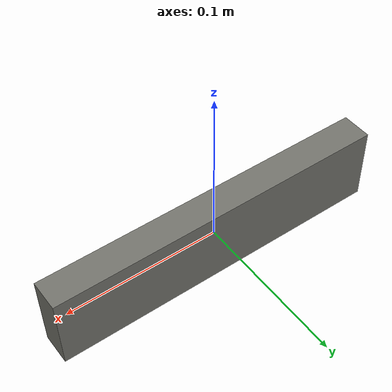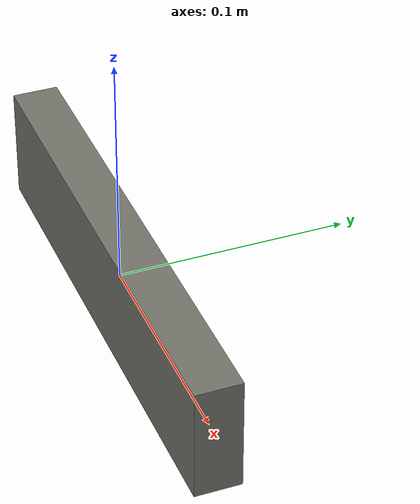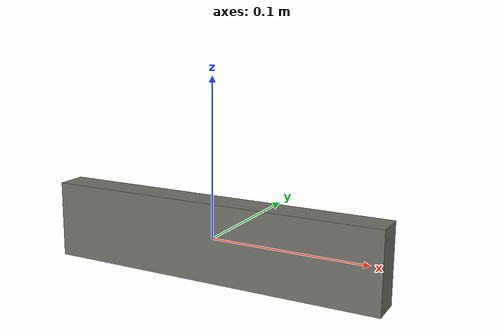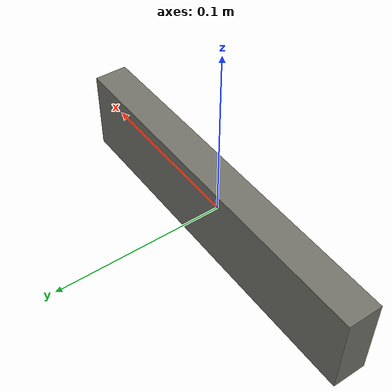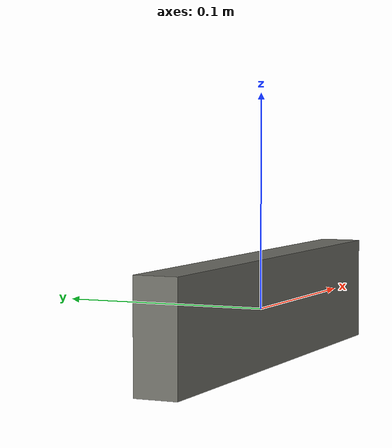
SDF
<?xml version="1.0"?>
<sdf version="1.9">
  <model name="bread_tray_stand_right">
    <static>true</static>
    <link name="bread_tray_stand_right_link">
      <inertial>
        <mass>1.000000</mass>
        <inertia>
          <ixx>0.001000000</ixx>
          <iyy>0.001000000</iyy>
          <izz>0.001000000</izz>
          <ixy>0</ixy>
          <ixz>0</ixz>
          <iyz>0</iyz>
        </inertia>
      </inertial>
      <visual name="bread_tray_stand_right_visual">
        <geometry>
          <mesh>
            <uri>meshes/bread_tray_stand_right.obj</uri>
          </mesh>
        </geometry>
        <material>
          <ambient>0.112500 0.112500 0.105000 1.000000</ambient>
          <diffuse>0.450000 0.450000 0.420000 1.000000</diffuse>
          <specular>0.120000 0.120000 0.120000 1.000000</specular>
        </material>
      </visual>
      <collision name="bread_tray_stand_right_bread_tray_stand_right_collision">
        <pose>0.000000000 0.000000000 0.000000000 0 0 0</pose>
        <geometry>
          <box>
            <size>0.219999999 0.020000000 0.050000001</size>
          </box>
        </geometry>
        <max_contacts>20</max_contacts>
        <surface>
          <friction>
            <ode>
              <mu>1.0</mu>
              <mu2>1.0</mu2>
              <slip1>0.0</slip1>
              <slip2>0.0</slip2>
            </ode>
          </friction>
        </surface>
      </collision>
    </link>
  </model>
</sdf>
